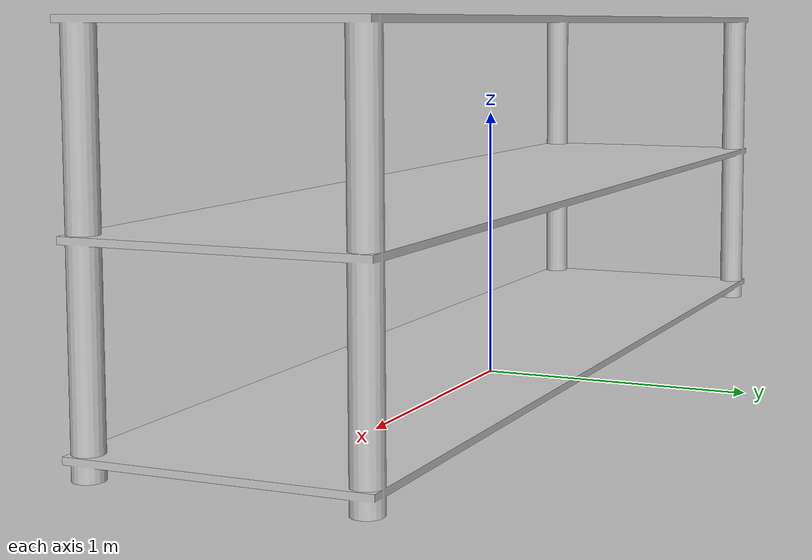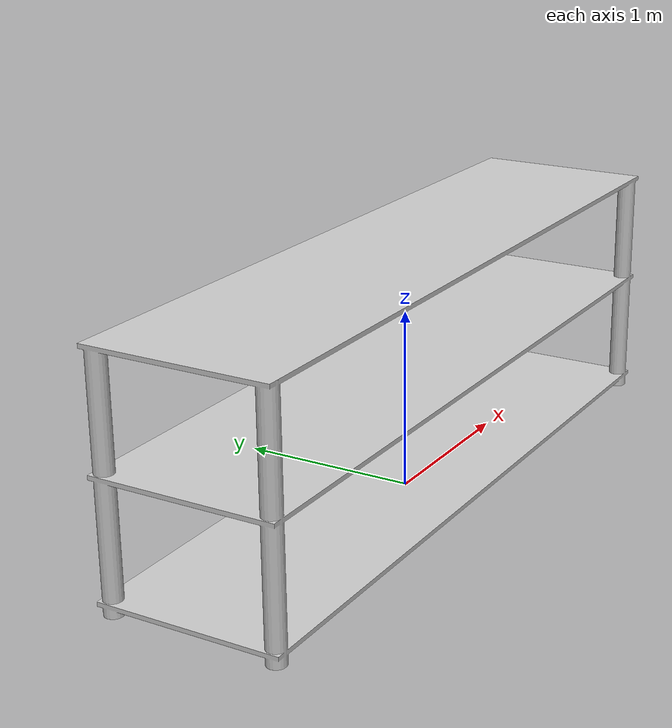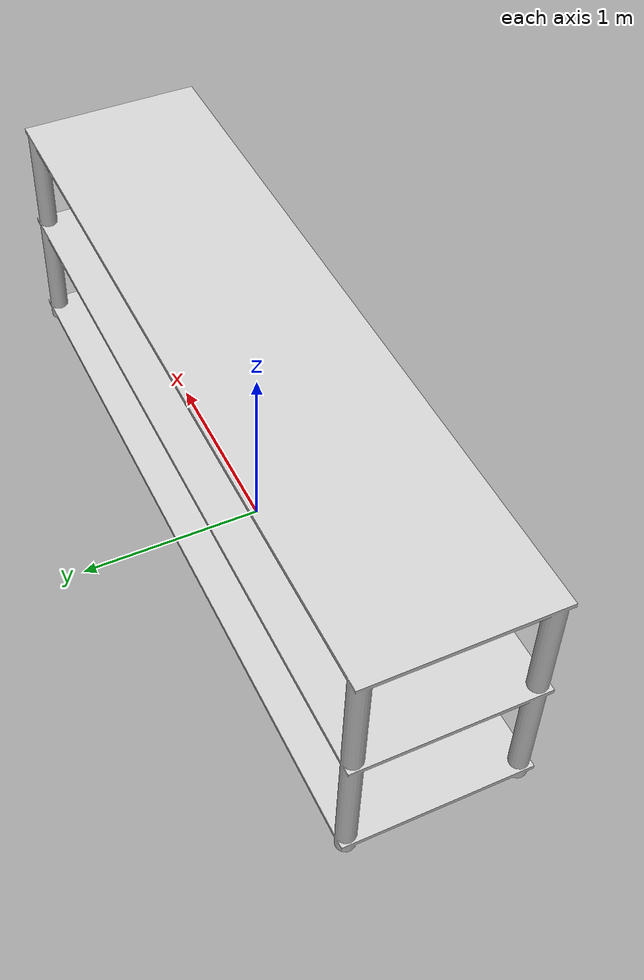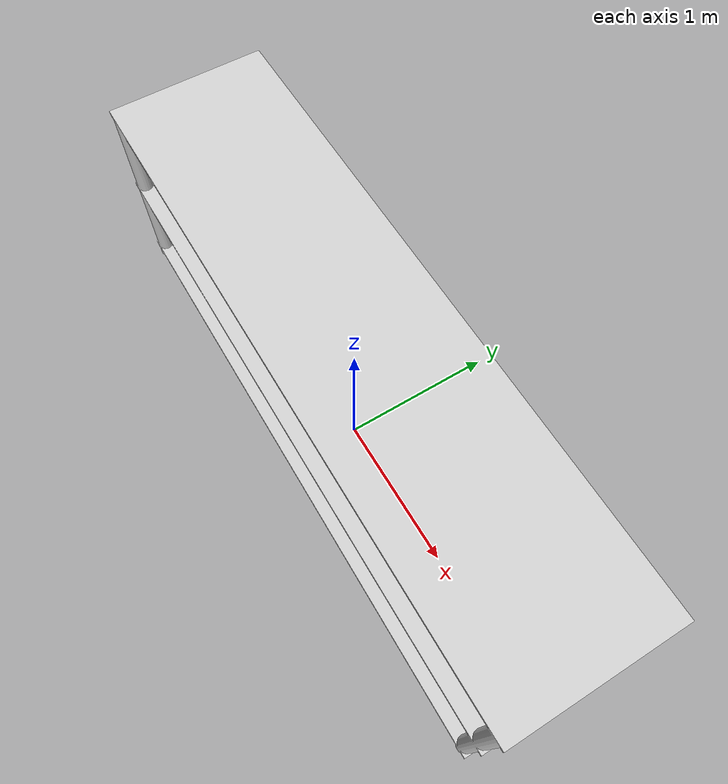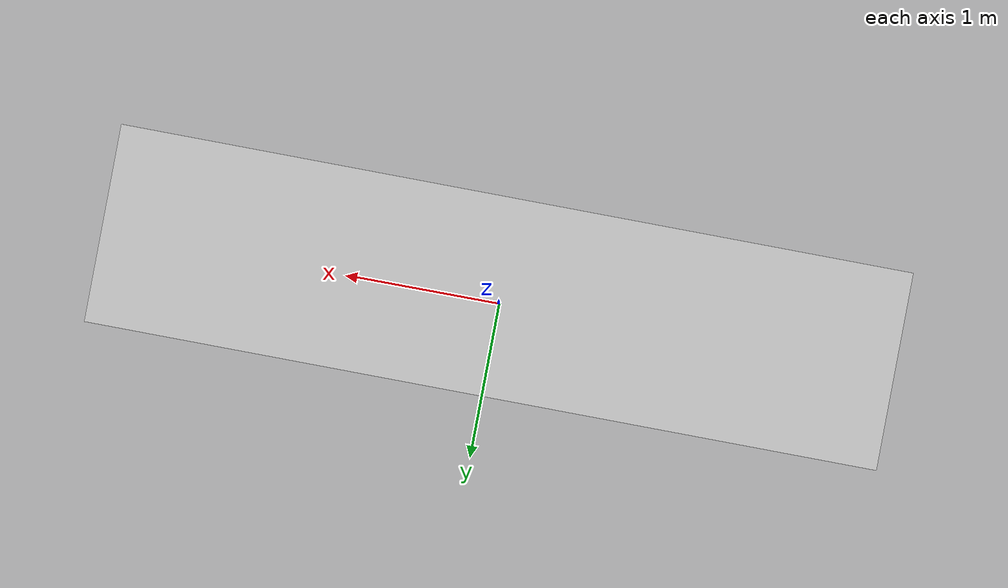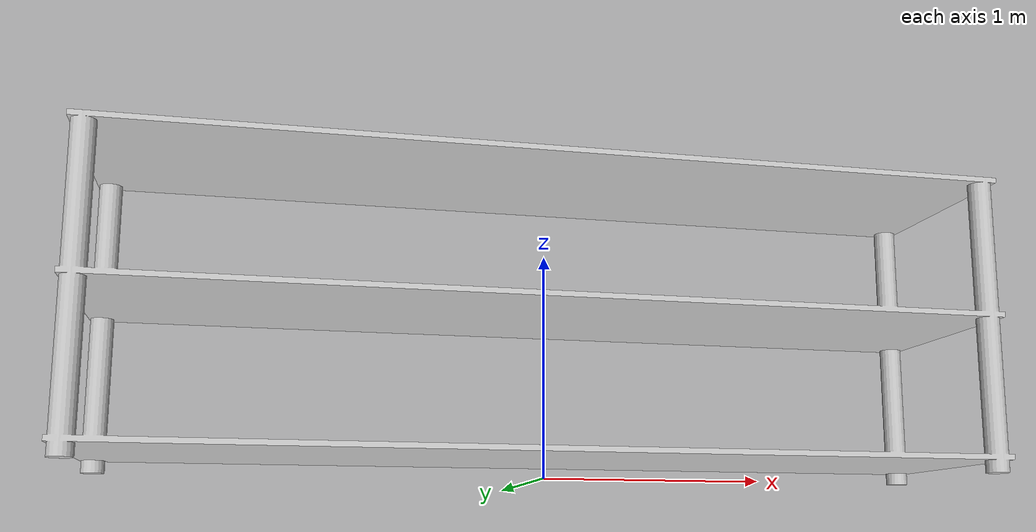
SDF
<?xml version='1.0' encoding='ASCII'?>
<sdf version="1.5">
  <model name="container_shelf">
    <link name="link_shelf">
      <inertial>
        <mass>30.0</mass>
      </inertial>
      <collision name="coll">
        <geometry>
          <mesh>
            <uri>model://container_shelf/meshes/container_shelf.dae</uri>
          </mesh>
        </geometry>
      </collision>
      <visual name="viz">
        <geometry>
          <mesh>
            <uri>model://container_shelf/meshes/container_shelf.dae</uri>
          </mesh>
        </geometry>
      </visual>
    </link>
  </model>
</sdf>
